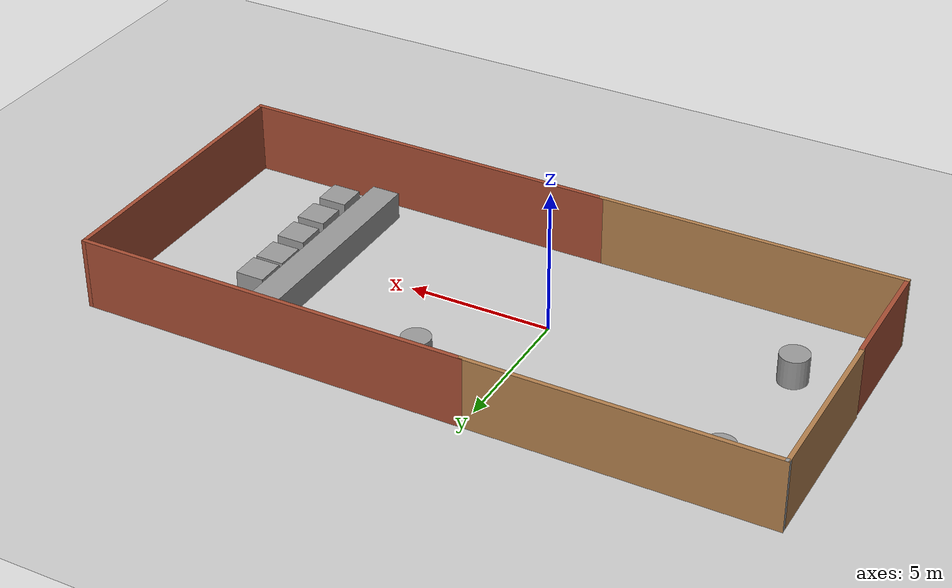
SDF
<sdf version="1.7">
 <world name="default">
  <light name="sun" type="directional">
   <pose>0 0 10 0 -0 0</pose>
   <diffuse>0.8 0.8 0.8 1</diffuse>
   <specular>0.2 0.2 0.2 1</specular>
   <attenuation>
    <range>1000</range>
    <constant>0.9</constant>
    <linear>0.01</linear>
    <quadratic>0.001</quadratic>
   </attenuation>
   <direction>-0.5 0.1 -0.9</direction>
   <spot><inner_angle>0</inner_angle><outer_angle>0</outer_angle><falloff>0</falloff></spot>
  </light>
  <model name="ground_plane">
   <static>1</static>
   <link name="link">
    <collision name="collision">
     <geometry><plane><normal>0 0 1</normal><size>100 100</size></plane></geometry>
     <surface>
      <contact><collide_bitmask>65535</collide_bitmask></contact>
      <friction><ode><mu>100</mu><mu2>50</mu2></ode></friction>
     </surface>
    </collision>
    <visual name="visual">
     <cast_shadows>0</cast_shadows>
     <geometry><plane><normal>0 0 1</normal><size>100 100</size></plane></geometry>
     <material>
      <script><uri>file://media/materials/scripts/gazebo.material</uri><name>Gazebo/Grey</name></script>
     </material>
    </visual>
   </link>
  </model>
  <gravity>0 0 -9.8</gravity>
  <magnetic_field>6e-06 2.3e-05 -4.2e-05</magnetic_field>
  <atmosphere type="adiabatic"/>
  <physics type="ode">
   <max_step_size>0.001</max_step_size>
   <real_time_factor>1</real_time_factor>
   <real_time_update_rate>1000</real_time_update_rate>
  </physics>
  <scene><ambient>0.4 0.4 0.4 1</ambient><background>0.7 0.7 0.7 1</background><shadows>1</shadows></scene>
  <spherical_coordinates>
   <surface_model>EARTH_WGS84</surface_model>
   <latitude_deg>0</latitude_deg>
   <longitude_deg>0</longitude_deg>
   <elevation>0</elevation>
   <heading_deg>0</heading_deg>
  </spherical_coordinates>
  <model name="obstacleroom">
   <pose>1.71346 0.69314 0 0 -0 0</pose>
   <link name="Wall_0">
    <collision name="Wall_0_Collision">
     <geometry><box><size>13.75 0.15 2.5</size></box></geometry>
     <pose>0 0 1.25 0 -0 0</pose>
    </collision>
    <visual name="Wall_0_Visual">
     <pose>0 0 1.25 0 -0 0</pose>
     <geometry><box><size>13.75 0.15 2.5</size></box></geometry>
     <material>
      <script><uri>file://media/materials/scripts/gazebo.material</uri><name>Gazebo/Bricks</name></script>
      <ambient>1 1 1 1</ambient>
     </material>
     <meta><layer>0</layer></meta>
    </visual>
    <pose>5.08059 5.06314 0 0 -0 0</pose>
   </link>
   <link name="Wall_1">
    <collision name="Wall_1_Collision">
     <geometry><box><size>10.2763 0.15 2.5</size></box></geometry>
     <pose>0 0 1.25 0 -0 0</pose>
    </collision>
    <visual name="Wall_1_Visual">
     <pose>0 0 1.25 0 -0 0</pose>
     <geometry><box><size>10.2763 0.15 2.5</size></box></geometry>
     <material>
      <script><uri>file://media/materials/scripts/gazebo.material</uri><name>Gazebo/Bricks</name></script>
      <ambient>1 1 1 1</ambient>
     </material>
     <meta><layer>0</layer></meta>
    </visual>
    <pose>11.9112 -0 0 0 -0 -1.5708</pose>
   </link>
   <link name="Wall_2">
    <collision name="Wall_2_Collision">
     <geometry><box><size>13.5 0.15 2.5</size></box></geometry>
     <pose>0 0 1.25 0 -0 0</pose>
    </collision>
    <visual name="Wall_2_Visual">
     <pose>0 0 1.25 0 -0 0</pose>
     <geometry><box><size>13.5 0.15 2.5</size></box></geometry>
     <material>
      <script><uri>file://media/materials/scripts/gazebo.material</uri><name>Gazebo/Bricks</name></script>
      <ambient>1 1 1 1</ambient>
     </material>
     <meta><layer>0</layer></meta>
    </visual>
    <pose>5.23618 -5.06314 0 0 -0 3.14159</pose>
   </link>
   <link name="Wall_3">
    <collision name="Wall_3_Collision">
     <geometry><box><size>10.5955 0.15 2.5</size></box></geometry>
     <pose>0 0 1.25 0 -0 0</pose>
    </collision>
    <visual name="Wall_3_Visual">
     <pose>0 0 1.25 0 -0 0</pose>
     <geometry><box><size>10.5955 0.15 2.5</size></box></geometry>
     <material>
      <script><uri>file://media/materials/scripts/gazebo.material</uri><name>Gazebo/Wood</name></script>
      <ambient>1 1 1 1</ambient>
     </material>
     <meta><layer>0</layer></meta>
    </visual>
    <pose>-6.66121 -5.06314 0 0 -0 3.14159</pose>
   </link>
   <link name="Wall_4">
    <collision name="Wall_4_Collision">
     <geometry><box><size>4.25 0.15 2.5</size></box></geometry>
     <pose>0 0 1.25 0 -0 0</pose>
    </collision>
    <visual name="Wall_4_Visual">
     <pose>0 0 1.25 0 -0 0</pose>
     <geometry><box><size>4.25 0.15 2.5</size></box></geometry>
     <material>
      <script><uri>file://media/materials/scripts/gazebo.material</uri><name>Gazebo/Bricks</name></script>
      <ambient>1 1 1 1</ambient>
     </material>
     <meta><layer>0</layer></meta>
    </visual>
    <pose>-11.8836 -2.98255 0 0 -0 1.5708</pose>
   </link>
   <link name="Wall_6">
    <collision name="Wall_6_Collision">
     <geometry><box><size>10.3418 0.15 2.5</size></box></geometry>
     <pose>0 0 1.25 0 -0 0</pose>
    </collision>
    <visual name="Wall_6_Visual">
     <pose>0 0 1.25 0 -0 0</pose>
     <geometry><box><size>10.3418 0.15 2.5</size></box></geometry>
     <material>
      <script><uri>file://media/materials/scripts/gazebo.material</uri><name>Gazebo/Wood</name></script>
      <ambient>1 1 1 1</ambient>
     </material>
     <meta><layer>0</layer></meta>
    </visual>
    <pose>-6.81529 5.06314 0 0 -0 3.14159</pose>
   </link>
   <link name="Wall_7">
    <collision name="Wall_7_Collision">
     <geometry><box><size>0.15 0.15 2.5</size></box></geometry>
     <pose>0 0 1.25 0 -0 0</pose>
    </collision>
    <visual name="Wall_7_Visual">
     <pose>0 0 1.25 0 -0 0</pose>
     <geometry><box><size>0.15 0.15 2.5</size></box></geometry>
     <material>
      <script><uri>file://media/materials/scripts/gazebo.material</uri><name>Gazebo/Grey</name></script>
      <ambient>1 1 1 1</ambient>
     </material>
     <meta><layer>0</layer></meta>
    </visual>
    <pose>-11.9112 5.06314 0 0 -0 0</pose>
   </link>
   <link name="Wall_8">
    <collision name="Wall_8_Collision">
     <geometry><box><size>6 0.15 2.5</size></box></geometry>
     <pose>0 0 1.25 0 -0 0</pose>
    </collision>
    <visual name="Wall_8_Visual">
     <pose>0 0 1.25 0 -0 0</pose>
     <geometry><box><size>6 0.15 2.5</size></box></geometry>
     <material>
      <script><uri>file://media/materials/scripts/gazebo.material</uri><name>Gazebo/Wood</name></script>
      <ambient>1 1 1 1</ambient>
     </material>
     <meta><layer>0</layer></meta>
    </visual>
    <pose>-11.9112 2.10755 0 0 -0 -1.5708</pose>
   </link>
   <static>1</static>
  </model>
  <model name="unit_box">
   <pose>9.26752 4.40506 0.499995 -1e-05 -0 -0</pose>
   <link name="link">
    <inertial>
     <mass>1</mass>
     <inertia>
      <ixx>0.166667</ixx>
      <ixy>0</ixy>
      <ixz>0</ixz>
      <iyy>0.166667</iyy>
      <iyz>0</iyz>
      <izz>0.166667</izz>
     </inertia>
    </inertial>
    <collision name="collision"><geometry><box><size>1 1 1</size></box></geometry></collision>
    <visual name="visual">
     <geometry><box><size>1 1 1</size></box></geometry>
     <material>
      <script><name>Gazebo/Grey</name><uri>file://media/materials/scripts/gazebo.material</uri></script>
     </material>
    </visual>
   </link>
  </model>
  <model name="unit_box_0">
   <pose>9.3099 -1.17992 0.499995 -1e-05 -0 -0</pose>
   <link name="link">
    <inertial>
     <mass>1</mass>
     <inertia>
      <ixx>0.166667</ixx>
      <ixy>0</ixy>
      <ixz>0</ixz>
      <iyy>0.166667</iyy>
      <iyz>0</iyz>
      <izz>0.166667</izz>
     </inertia>
    </inertial>
    <collision name="collision"><geometry><box><size>1 1 1</size></box></geometry></collision>
    <visual name="visual">
     <geometry><box><size>1 1 1</size></box></geometry>
     <material>
      <script><name>Gazebo/Grey</name><uri>file://media/materials/scripts/gazebo.material</uri></script>
     </material>
    </visual>
   </link>
  </model>
  <model name="unit_box_1">
   <pose>9.18277 1.53998 0.499995 -1e-05 -0 -0</pose>
   <link name="link">
    <inertial>
     <mass>1</mass>
     <inertia>
      <ixx>0.166667</ixx>
      <ixy>0</ixy>
      <ixz>0</ixz>
      <iyy>0.166667</iyy>
      <iyz>0</iyz>
      <izz>0.166667</izz>
     </inertia>
    </inertial>
    <collision name="collision"><geometry><box><size>1 1 1</size></box></geometry></collision>
    <visual name="visual">
     <geometry><box><size>1 1 1</size></box></geometry>
     <material>
      <script><name>Gazebo/Grey</name><uri>file://media/materials/scripts/gazebo.material</uri></script>
     </material>
    </visual>
   </link>
  </model>
  <model name="unit_cylinder">
   <pose>2.77709 3.58242 0.499998 3e-06 -3e-06 0</pose>
   <link name="link">
    <inertial>
     <mass>1</mass>
     <inertia><ixx>0.145833</ixx><ixy>0</ixy><ixz>0</ixz><iyy>0.145833</iyy><iyz>0</iyz><izz>0.125</izz></inertia>
    </inertial>
    <collision name="collision">
     <geometry><cylinder><radius>0.5</radius><length>1</length></cylinder></geometry>
    </collision>
    <visual name="visual">
     <geometry><cylinder><radius>0.5</radius><length>1</length></cylinder></geometry>
     <material>
      <script><name>Gazebo/Grey</name><uri>file://media/materials/scripts/gazebo.material</uri></script>
     </material>
    </visual>
   </link>
  </model>
  <model name="unit_cylinder_0">
   <pose>-7.87101 -1.08115 0.499998 3e-06 -3e-06 0</pose>
   <link name="link">
    <inertial>
     <mass>1</mass>
     <inertia><ixx>0.145833</ixx><ixy>0</ixy><ixz>0</ixz><iyy>0.145833</iyy><iyz>0</iyz><izz>0.125</izz></inertia>
    </inertial>
    <collision name="collision">
     <geometry><cylinder><radius>0.5</radius><length>1</length></cylinder></geometry>
    </collision>
    <visual name="visual">
     <geometry><cylinder><radius>0.5</radius><length>1</length></cylinder></geometry>
     <material>
      <script><name>Gazebo/Grey</name><uri>file://media/materials/scripts/gazebo.material</uri></script>
     </material>
    </visual>
   </link>
  </model>
  <model name="unit_cylinder_1">
   <pose>-7.61189 4.10967 0.499998 3e-06 -3e-06 0</pose>
   <link name="link">
    <inertial>
     <mass>1</mass>
     <inertia><ixx>0.145833</ixx><ixy>0</ixy><ixz>0</ixz><iyy>0.145833</iyy><iyz>0</iyz><izz>0.125</izz></inertia>
    </inertial>
    <collision name="collision">
     <geometry><cylinder><radius>0.5</radius><length>1</length></cylinder></geometry>
    </collision>
    <visual name="visual">
     <geometry><cylinder><radius>0.5</radius><length>1</length></cylinder></geometry>
     <material>
      <script><name>Gazebo/Grey</name><uri>file://media/materials/scripts/gazebo.material</uri></script>
     </material>
    </visual>
   </link>
  </model>
  <model name="unit_box_2">
   <pose>9.21606 2.65416 0.499995 0 1e-05 0</pose>
   <link name="link">
    <inertial>
     <mass>1</mass>
     <inertia>
      <ixx>0.166667</ixx>
      <ixy>0</ixy>
      <ixz>0</ixz>
      <iyy>0.166667</iyy>
      <iyz>0</iyz>
      <izz>0.166667</izz>
     </inertia>
    </inertial>
    <collision name="collision"><geometry><box><size>1 1 1</size></box></geometry></collision>
    <visual name="visual">
     <geometry><box><size>1 1 1</size></box></geometry>
     <material>
      <script><name>Gazebo/Grey</name><uri>file://media/materials/scripts/gazebo.material</uri></script>
     </material>
    </visual>
   </link>
  </model>
  <model name="unit_box_3">
   <pose>9.26267 0.150819 0.499995 0 1e-05 0</pose>
   <link name="link">
    <inertial>
     <mass>1</mass>
     <inertia>
      <ixx>0.166667</ixx>
      <ixy>0</ixy>
      <ixz>0</ixz>
      <iyy>0.166667</iyy>
      <iyz>0</iyz>
      <izz>0.166667</izz>
     </inertia>
    </inertial>
    <collision name="collision"><geometry><box><size>1 1 1</size></box></geometry></collision>
    <visual name="visual">
     <geometry><box><size>1 1 1</size></box></geometry>
     <material>
      <script><name>Gazebo/Grey</name><uri>file://media/materials/scripts/gazebo.material</uri></script>
     </material>
    </visual>
   </link>
  </model>
  <model name="unit_box_4">
   <pose>9.32572 -2.56474 0.499995 -1e-05 -0 -0</pose>
   <link name="link">
    <inertial>
     <mass>1</mass>
     <inertia>
      <ixx>0.166667</ixx>
      <ixy>0</ixy>
      <ixz>0</ixz>
      <iyy>0.166667</iyy>
      <iyz>0</iyz>
      <izz>0.166667</izz>
     </inertia>
    </inertial>
    <collision name="collision"><geometry><box><size>1 1 1</size></box></geometry></collision>
    <visual name="visual">
     <geometry><box><size>1 1 1</size></box></geometry>
     <material>
      <script><name>Gazebo/Grey</name><uri>file://media/materials/scripts/gazebo.material</uri></script>
     </material>
    </visual>
   </link>
  </model>
  <model name="unit_box_5">
   <pose>8.12692 0.581817 0.47871 0.005045 1.3e-05 -0.002561</pose>
   <link name="link">
    <inertial>
     <mass>1</mass>
     <inertia>
      <ixx>0.166667</ixx>
      <ixy>0</ixy>
      <ixz>0</ixz>
      <iyy>0.166667</iyy>
      <iyz>0</iyz>
      <izz>0.166667</izz>
     </inertia>
    </inertial>
    <collision name="collision"><geometry><box><size>1 8.45176 1</size></box></geometry></collision>
    <visual name="visual">
     <geometry><box><size>1 8.45176 1</size></box></geometry>
     <material>
      <script><name>Gazebo/Grey</name><uri>file://media/materials/scripts/gazebo.material</uri></script>
     </material>
    </visual>
   </link>
  </model>
 </world>
</sdf>
